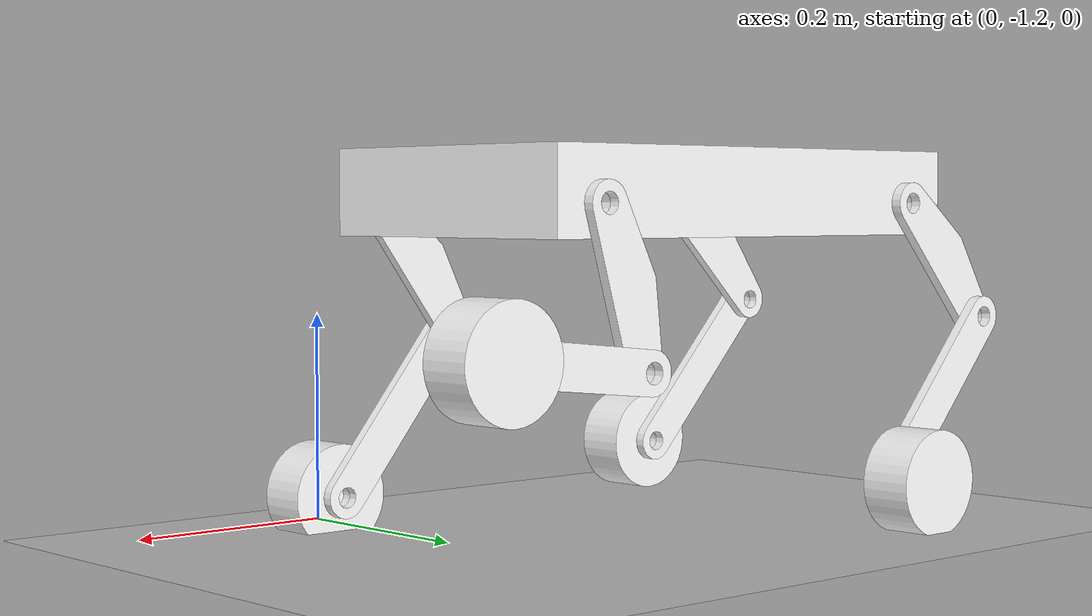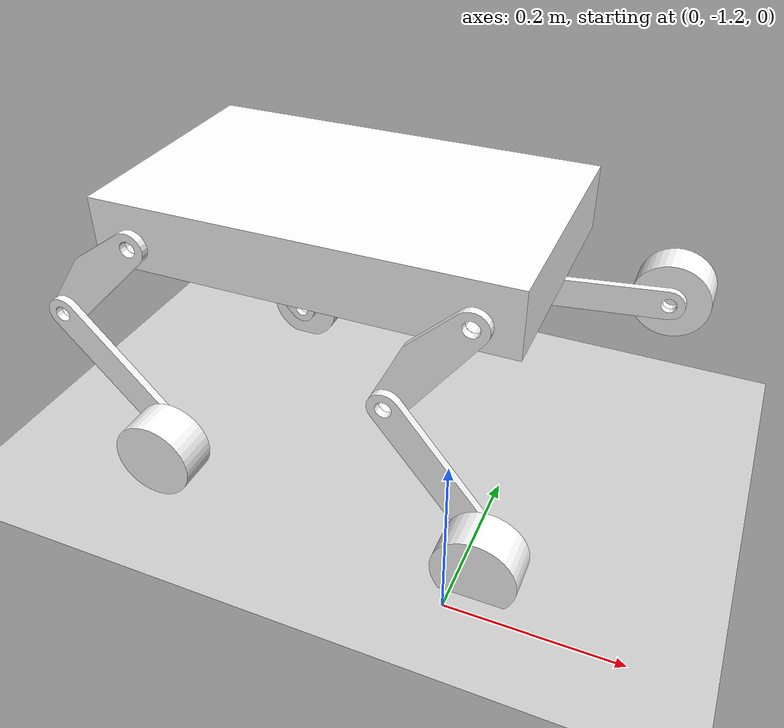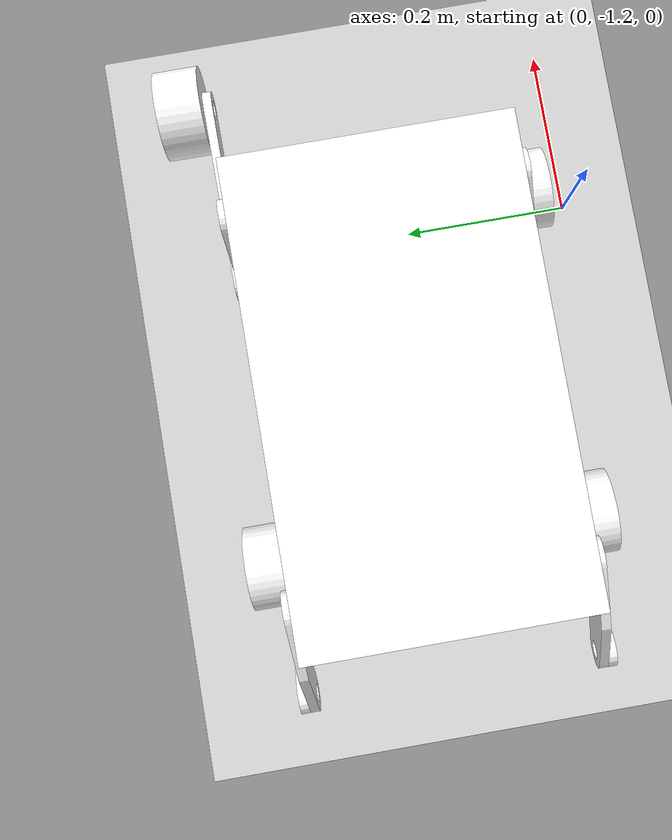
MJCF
<mujoco model="FootWheel">
    <compiler angle="radian" meshdir="/home/phragmund/FootWheel/meshes/" />
    <size njmax="500" nconmax="100" />
    <default>
  <geom
    friction="0.9 0.09 0.009"
    solimp="0.9 0.95 0.001"
    solref="0.02 1"
    margin="0.01"
    condim="6"
  />
</default>

<!-- 恢复地球标准重力，避免低重力导致的动力学异常 -->
<option timestep="0.001" gravity="0 0 -9.81"/>
    <asset>
        <mesh name="base_link" file="base_link.STL" />
        <mesh name="LFU_Link" file="LFU_Link.STL" />
        <mesh name="LFD_Link" file="LFD_Link.STL" />
        <mesh name="LFW_Link" file="LFW_Link.STL" />
        <mesh name="LBU_Link" file="LBU_Link.STL" />
        <mesh name="LBD_Link" file="LBD_Link.STL" />
        <mesh name="LBW_Link" file="LBW_Link.STL" />
        <mesh name="RFU_Link" file="RFU_Link.STL" />
        <mesh name="RFD_Link" file="RFD_Link.STL" />
        <mesh name="RFW_Link" file="RFW_Link.STL" />
        <mesh name="RBU_Link" file="RBU_Link.STL" />
        <mesh name="RBD_Link" file="RBD_Link.STL" />
        <mesh name="RBW_Link" file="RBW_Link.STL" />
    </asset>
    <worldbody>
        <geom name="ground" type="plane" pos="0 0 0" size="10 10 0.1"
        friction="2 1 0.2"
        rgba="0.8 0.8 0.8 1" condim="3"/>
        <body name="base_link" pos="0 0 0.15">
            <inertial pos="-0.21102 0.16764 0.95856" quat="0.5 0.5 0.5 0.5" mass="0.148" diaginertia="0.33766 0.25381 0.096862" />
            <joint name="floating_base_joint" type="free" />
            <geom type="mesh" contype="0" conaffinity="0" group="1" rgba="1 1 1 1" mesh="base_link" />
            <geom type="mesh" rgba="1 1 1 1" mesh="base_link" />
            <body name="LFU_Link" pos="-0.011018 -0.79856 0.15749" quat="0.801169 0 -0.598438 0">
                <inertial pos="-0.075 -0.005 0.0033736" quat="0.5 0.5 0.5 0.5" mass="0.078366" diaginertia="0.00019382 0.00017947 1.5653e-05" />
                <joint name="LFU_J" pos="0 0 0" axis="0 1 0" limited="true" range="-1.57 1.57" />
                <geom type="mesh" contype="0" conaffinity="0" group="1" rgba="1 1 1 1" mesh="LFU_Link" />
                <geom type="mesh" rgba="1 1 1 1" mesh="LFU_Link" />
                <body name="LFD_Link" pos="-0.15 0 0" quat="0.831247 0 0.555904 0">
                    <inertial pos="0.1 0.005 0" quat="0.5 0.5 0.5 0.5" mass="0.088009" diaginertia="0.00037097 0.0003597 1.2735e-05" />
                    <joint name="LFD_J" pos="0 0 0" axis="0 1 0" limited="true" range="-1.57 1.57" />
                    <geom type="mesh" contype="0" conaffinity="0" group="1" rgba="1 1 1 1" mesh="LFD_Link" />
                    <geom type="mesh" rgba="1 1 1 1" mesh="LFD_Link" />
                    <body name="LFW_Link" pos="0.2 0.01 0" quat="0.422817 0.566766 -0.566769 -0.422818">
                        <inertial pos="-0.025161 0 0" mass="0.39735" diaginertia="0.00050053 0.0003324 0.0003324" />
                        <joint name="LFW_J" pos="0 0 0" axis="1 0 0" />
                        <geom type="mesh" contype="0" conaffinity="0" group="1" rgba="1 1 1 1" mesh="LFW_Link" />
                        <geom type="mesh" rgba="1 1 1 1" mesh="LFW_Link" />
                    </body>
                </body>
            </body>
            <body name="LBU_Link" pos="-0.41102 -0.79856 0.15749" quat="0.91335 0 -0.407176 0">
                <inertial pos="-0.075 -0.005 0.0033736" quat="0.5 0.5 0.5 0.5" mass="0.078366" diaginertia="0.00019382 0.00017947 1.5653e-05" />
                <joint name="LBU_J" pos="0 0 0" axis="0 1 0" limited="true" range="-1.57 1.57" />
                <geom type="mesh" contype="0" conaffinity="0" group="1" rgba="1 1 1 1" mesh="LBU_Link" />
                <geom type="mesh" rgba="1 1 1 1" mesh="LBU_Link" />
                <body name="LBD_Link" pos="-0.15 0 0" quat="0.665191 -2.99299e-07 0.746673 -2.99299e-07">
                    <inertial pos="0.1 0.005 0" quat="0.5 0.5 0.5 0.5" mass="0.088009" diaginertia="0.00037097 0.0003597 1.2735e-05" />
                    <joint name="LBD_J" pos="0 0 0" axis="0 1 0" limited="true" range="-1.57 1.57" />
                    <geom type="mesh" contype="0" conaffinity="0" group="1" rgba="1 1 1 1" mesh="LBD_Link" />
                    <geom type="mesh" rgba="1 1 1 1" mesh="LBD_Link" />
                    <body name="LBW_Link" pos="0.2 0.01 0" quat="0.171922 0.685887 -0.68589 -0.171923">
                        <inertial pos="-0.025161 0 0" mass="0.39735" diaginertia="0.00050053 0.0003324 0.0003324" />
                        <joint name="LBW_J" pos="0 0 0" axis="1 0 0" />
                        <geom type="mesh" contype="0" conaffinity="0" group="1" rgba="1 1 1 1" mesh="LBW_Link" />
                        <geom type="mesh" rgba="1 1 1 1" mesh="LBW_Link" />
                    </body>
                </body>
            </body>
            <body name="RFU_Link" pos="-0.011018 -1.1086 0.15749" quat="0.893308 0 -0.449446 0">
                <inertial pos="-0.075 -0.005 0.0033736" quat="0.5 0.5 0.5 0.5" mass="0.078366" diaginertia="0.00019382 0.00017947 1.5653e-05" />
                <joint name="RFU_J" pos="0 0 0" axis="0 1 0" limited="true" range="-1.57 1.57" />
                <geom type="mesh" contype="0" conaffinity="0" group="1" rgba="1 1 1 1" mesh="RFU_Link" />
                <geom type="mesh" rgba="1 1 1 1" mesh="RFU_Link" />
                <body name="RFD_Link" pos="-0.15 -0.01 0" quat="0.611536 -6.60006e-07 0.791217 -6.60006e-07">
                    <inertial pos="0.1 -0.005 0" quat="0.5 0.5 0.5 0.5" mass="0.088009" diaginertia="0.00037097 0.0003597 1.2735e-05" />
                    <joint name="RFD_J" pos="0 0 0" axis="0 1 0" limited="true" range="-1.57 1.57" />
                    <geom type="mesh" contype="0" conaffinity="0" group="1" rgba="1 1 1 1" mesh="RFD_Link" />
                    <geom type="mesh" rgba="1 1 1 1" mesh="RFD_Link" />
                    <body name="RFW_Link" pos="0.2 -0.01 0" quat="0.666926 0.234964 0.234965 0.666928">
                        <inertial pos="-0.025161 0 0" mass="0.39735" diaginertia="0.00050053 0.0003324 0.0003324" />
                        <joint name="RFW_J" pos="0 0 0" axis="1 0 0" />
                        <geom type="mesh" contype="0" conaffinity="0" group="1" rgba="1 1 1 1" mesh="RFW_Link" />
                        <geom type="mesh" rgba="1 1 1 1" mesh="RFW_Link" />
                    </body>
                </body>
            </body>
            <body name="RBU_Link" pos="-0.41102 -1.1086 0.15749" quat="-3.39776e-06 0.379934 -1.39558e-06 -0.925014">
                <inertial pos="0.075 0.005 0.0033736" quat="0.5 0.5 0.5 0.5" mass="0.078366" diaginertia="0.00019382 0.00017947 1.5653e-05" />
                <joint name="RBU_J" pos="0 0 0" axis="0 -1 0" limited="true" range="-1.57 1.57" />
                <geom type="mesh" contype="0" conaffinity="0" group="1" rgba="1 1 1 1" mesh="RBU_Link" />
                <geom type="mesh" rgba="1 1 1 1" mesh="RBU_Link" />
                <body name="RBD_Link" pos="0.15 0.01 0" quat="0.720377 0 0.693582 0">
                    <inertial pos="0.1 0.005 0" quat="0.5 0.5 0.5 0.5" mass="0.088009" diaginertia="0.00037097 0.0003597 1.2735e-05" />
                    <joint name="RBD_J" pos="0 0 0" axis="0 1 0" limited="true" range="-1.57 1.57" />
                    <geom type="mesh" contype="0" conaffinity="0" group="1" rgba="1 1 1 1" mesh="RBD_Link" />
                    <geom type="mesh" rgba="1 1 1 1" mesh="RBD_Link" />
                    <body name="RBW_Link" pos="0.2 0.01 0" quat="0.256225 -0.65905 0.659052 -0.256226">
                        <inertial pos="-0.025161 0 0" mass="0.39735" diaginertia="0.00050053 0.0003324 0.0003324" />
                        <joint name="RBW_J" pos="0 0 0" axis="1 0 0" />
                        <geom type="mesh" contype="0" conaffinity="0" group="1" rgba="1 1 1 1" mesh="RBW_Link" />
                        <geom type="mesh" rgba="1 1 1 1" mesh="RBW_Link" />
                    </body>
                </body>
            </body>
        </body>
    </worldbody>
    <actuator>
        <!-- 定义一个位置控制的执行器，关联到名为 LFD_J 的关节 -->
        <position name="LFU_J" joint="LFU_J" kp="60.0"/>
        <position name="LFD_J" joint="LFD_J" kp="60.0"/>
        <position name="LBU_J" joint="LBU_J" kp="60.0"/>
        <position name="LBD_J" joint="LBD_J" kp="60.0"/>
        <position name="RFU_J" joint="RFU_J" kp="60.0"/>
        <position name="RFD_J" joint="RFD_J" kp="60.0"/>
        <position name="RBU_J" joint="RBU_J" kp="60.0"/>
        <position name="RBD_J" joint="RBD_J" kp="60.0"/>

        <velocity name="LFW_J" joint="LFW_J" kv="0.5"/>
        <velocity name="LBW_J" joint="LBW_J" kv="0.5"/>
        <velocity name="RFW_J" joint="RFW_J" kv="0.5"/>
        <velocity name="RBW_J" joint="RBW_J" kv="0.5"/>
        <!-- 也可以定义速度控制/扭矩控制执行器 -->
</actuator>
</mujoco>
